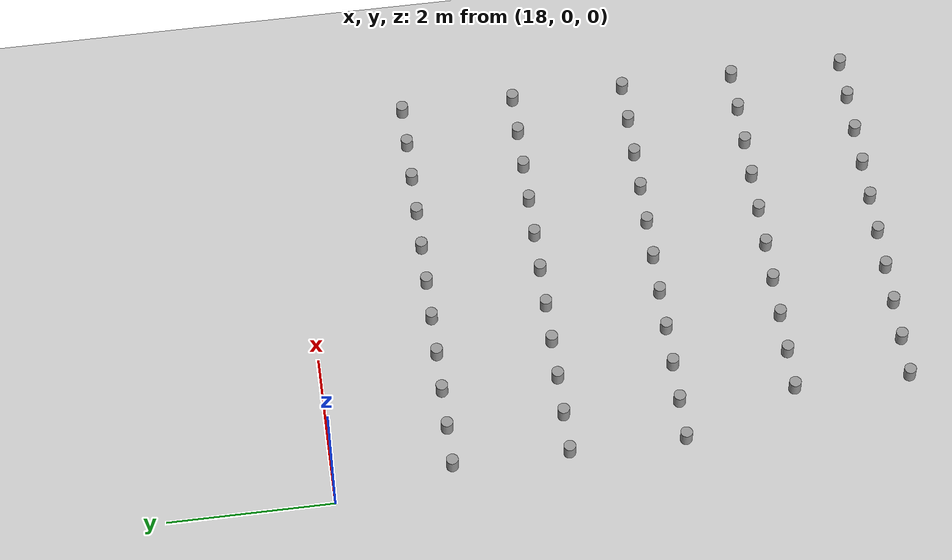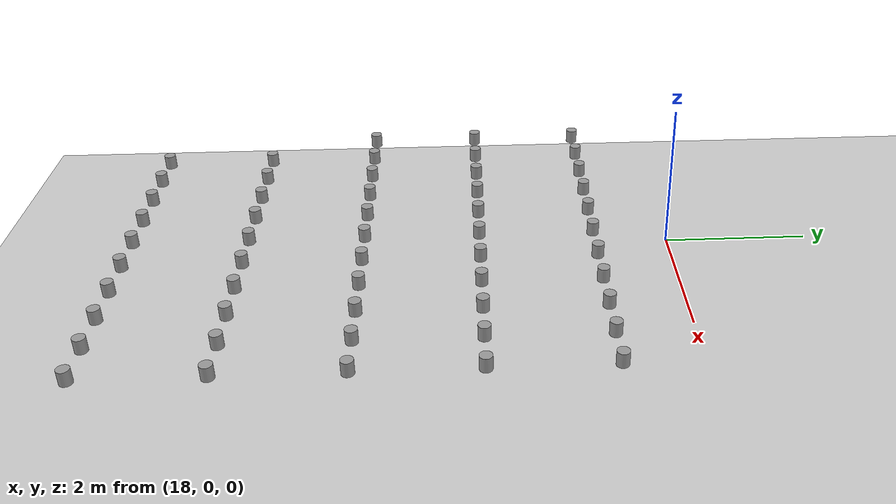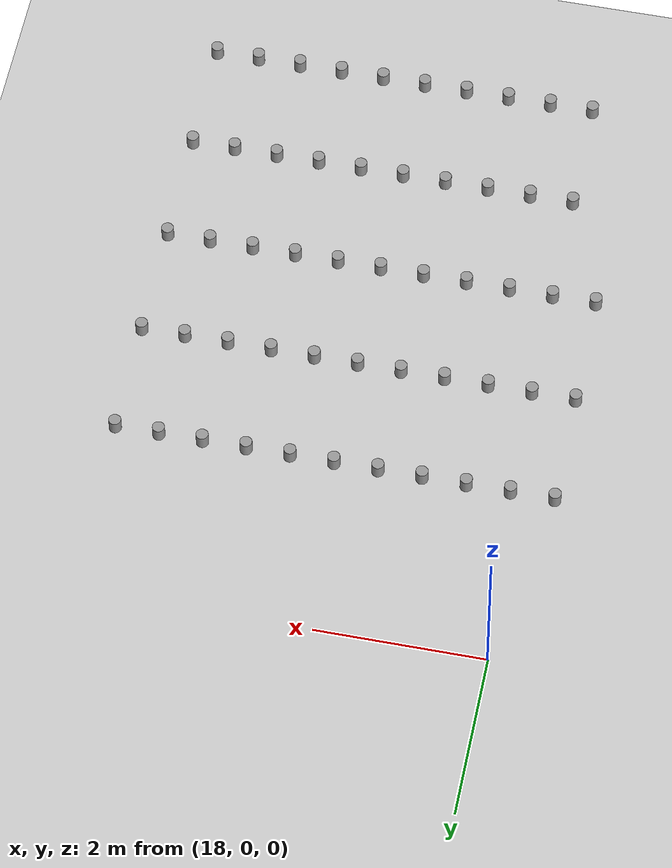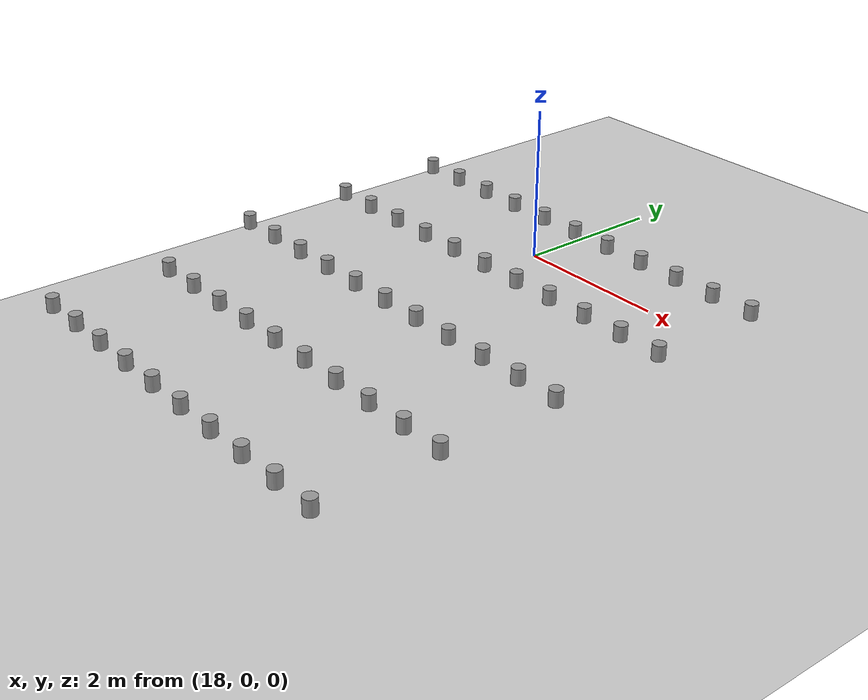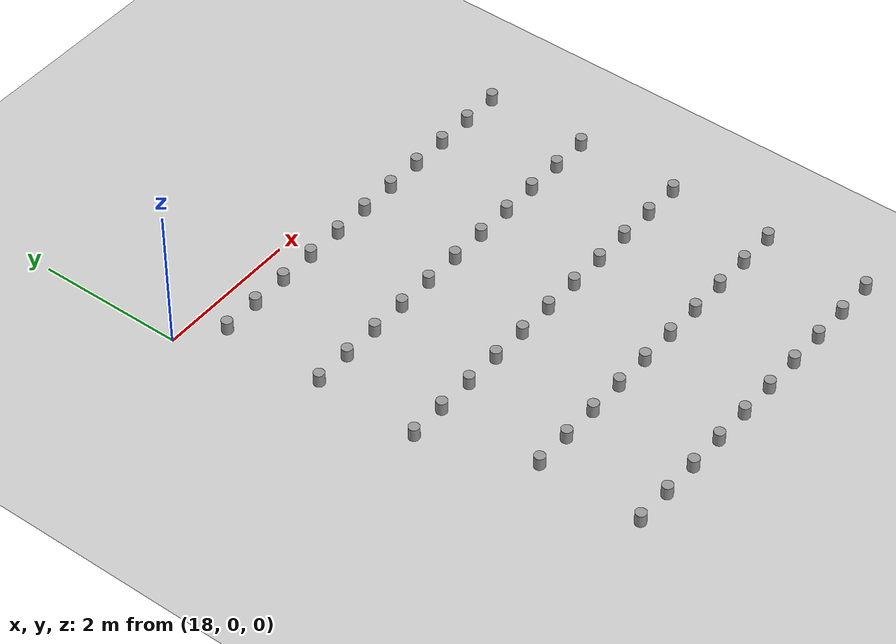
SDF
<sdf version="1.4">
 <world name="default">
  <model name="pot_107">
   <static>1</static>
   <link name="link_0">
    <collision name="collision">
     <geometry><cylinder><length>0.17</length><radius>0.07</radius></cylinder></geometry>
    </collision>
    <visual name="visual">
     <geometry><cylinder><length>0.17</length><radius>0.07</radius></cylinder></geometry>
     <material>
      <script><uri>file://media/materials/scripts/gazebo.material</uri><name>Gazebo/Grey</name></script>
      <emissive>0 0 0 1</emissive>
      <shader type="vertex"><normal_map>__default__</normal_map></shader>
      <specular>0.01 0.01 0.01 1</specular>
      <lighting>1</lighting>
      <ambient>0.1 0.1 0.1 1</ambient>
      <diffuse>0.05 0.05 0.05 1</diffuse>
     </material>
     <cast_shadows>0</cast_shadows>
    </visual>
    <pose>17.524 -4.050 1.467 0.0 0.0 0.0</pose>
   </link>
  </model>
  <model name="pot_108">
   <static>1</static>
   <link name="link_0">
    <collision name="collision">
     <geometry><cylinder><length>0.17</length><radius>0.07</radius></cylinder></geometry>
    </collision>
    <visual name="visual">
     <geometry><cylinder><length>0.17</length><radius>0.07</radius></cylinder></geometry>
     <material>
      <script><uri>file://media/materials/scripts/gazebo.material</uri><name>Gazebo/Grey</name></script>
      <emissive>0 0 0 1</emissive>
      <shader type="vertex"><normal_map>__default__</normal_map></shader>
      <specular>0.01 0.01 0.01 1</specular>
      <lighting>1</lighting>
      <ambient>0.1 0.1 0.1 1</ambient>
      <diffuse>0.05 0.05 0.05 1</diffuse>
     </material>
     <cast_shadows>0</cast_shadows>
    </visual>
    <pose>17.524 -2.700 1.467 0.0 0.0 0.0</pose>
   </link>
  </model>
  <model name="pot_109">
   <static>1</static>
   <link name="link_0">
    <collision name="collision">
     <geometry><cylinder><length>0.17</length><radius>0.07</radius></cylinder></geometry>
    </collision>
    <visual name="visual">
     <geometry><cylinder><length>0.17</length><radius>0.07</radius></cylinder></geometry>
     <material>
      <script><uri>file://media/materials/scripts/gazebo.material</uri><name>Gazebo/Grey</name></script>
      <emissive>0 0 0 1</emissive>
      <shader type="vertex"><normal_map>__default__</normal_map></shader>
      <specular>0.01 0.01 0.01 1</specular>
      <lighting>1</lighting>
      <ambient>0.1 0.1 0.1 1</ambient>
      <diffuse>0.05 0.05 0.05 1</diffuse>
     </material>
     <cast_shadows>0</cast_shadows>
    </visual>
    <pose>17.524 -1.350 1.467 0.0 0.0 0.0</pose>
   </link>
  </model>
  <model name="pot_110">
   <static>1</static>
   <link name="link_0">
    <collision name="collision">
     <geometry><cylinder><length>0.17</length><radius>0.07</radius></cylinder></geometry>
    </collision>
    <visual name="visual">
     <geometry><cylinder><length>0.17</length><radius>0.07</radius></cylinder></geometry>
     <material>
      <script><uri>file://media/materials/scripts/gazebo.material</uri><name>Gazebo/Grey</name></script>
      <emissive>0 0 0 1</emissive>
      <shader type="vertex"><normal_map>__default__</normal_map></shader>
      <specular>0.01 0.01 0.01 1</specular>
      <lighting>1</lighting>
      <ambient>0.1 0.1 0.1 1</ambient>
      <diffuse>0.05 0.05 0.05 1</diffuse>
     </material>
     <cast_shadows>0</cast_shadows>
    </visual>
    <pose>18.024 -6.750 1.467 0.0 0.0 0.0</pose>
   </link>
  </model>
  <model name="pot_111">
   <static>1</static>
   <link name="link_0">
    <collision name="collision">
     <geometry><cylinder><length>0.17</length><radius>0.07</radius></cylinder></geometry>
    </collision>
    <visual name="visual">
     <geometry><cylinder><length>0.17</length><radius>0.07</radius></cylinder></geometry>
     <material>
      <script><uri>file://media/materials/scripts/gazebo.material</uri><name>Gazebo/Grey</name></script>
      <emissive>0 0 0 1</emissive>
      <shader type="vertex"><normal_map>__default__</normal_map></shader>
      <specular>0.01 0.01 0.01 1</specular>
      <lighting>1</lighting>
      <ambient>0.1 0.1 0.1 1</ambient>
      <diffuse>0.05 0.05 0.05 1</diffuse>
     </material>
     <cast_shadows>0</cast_shadows>
    </visual>
    <pose>18.024 -5.400 1.467 0.0 0.0 0.0</pose>
   </link>
  </model>
  <model name="pot_112">
   <static>1</static>
   <link name="link_0">
    <collision name="collision">
     <geometry><cylinder><length>0.17</length><radius>0.07</radius></cylinder></geometry>
    </collision>
    <visual name="visual">
     <geometry><cylinder><length>0.17</length><radius>0.07</radius></cylinder></geometry>
     <material>
      <script><uri>file://media/materials/scripts/gazebo.material</uri><name>Gazebo/Grey</name></script>
      <emissive>0 0 0 1</emissive>
      <shader type="vertex"><normal_map>__default__</normal_map></shader>
      <specular>0.01 0.01 0.01 1</specular>
      <lighting>1</lighting>
      <ambient>0.1 0.1 0.1 1</ambient>
      <diffuse>0.05 0.05 0.05 1</diffuse>
     </material>
     <cast_shadows>0</cast_shadows>
    </visual>
    <pose>18.024 -4.050 1.467 0.0 0.0 0.0</pose>
   </link>
  </model>
  <model name="pot_113">
   <static>1</static>
   <link name="link_0">
    <collision name="collision">
     <geometry><cylinder><length>0.17</length><radius>0.07</radius></cylinder></geometry>
    </collision>
    <visual name="visual">
     <geometry><cylinder><length>0.17</length><radius>0.07</radius></cylinder></geometry>
     <material>
      <script><uri>file://media/materials/scripts/gazebo.material</uri><name>Gazebo/Grey</name></script>
      <emissive>0 0 0 1</emissive>
      <shader type="vertex"><normal_map>__default__</normal_map></shader>
      <specular>0.01 0.01 0.01 1</specular>
      <lighting>1</lighting>
      <ambient>0.1 0.1 0.1 1</ambient>
      <diffuse>0.05 0.05 0.05 1</diffuse>
     </material>
     <cast_shadows>0</cast_shadows>
    </visual>
    <pose>18.024 -2.700 1.467 0.0 0.0 0.0</pose>
   </link>
  </model>
  <model name="pot_114">
   <static>1</static>
   <link name="link_0">
    <collision name="collision">
     <geometry><cylinder><length>0.17</length><radius>0.07</radius></cylinder></geometry>
    </collision>
    <visual name="visual">
     <geometry><cylinder><length>0.17</length><radius>0.07</radius></cylinder></geometry>
     <material>
      <script><uri>file://media/materials/scripts/gazebo.material</uri><name>Gazebo/Grey</name></script>
      <emissive>0 0 0 1</emissive>
      <shader type="vertex"><normal_map>__default__</normal_map></shader>
      <specular>0.01 0.01 0.01 1</specular>
      <lighting>1</lighting>
      <ambient>0.1 0.1 0.1 1</ambient>
      <diffuse>0.05 0.05 0.05 1</diffuse>
     </material>
     <cast_shadows>0</cast_shadows>
    </visual>
    <pose>18.024 -1.350 1.467 0.0 0.0 0.0</pose>
   </link>
  </model>
  <model name="pot_115">
   <static>1</static>
   <link name="link_0">
    <collision name="collision">
     <geometry><cylinder><length>0.17</length><radius>0.07</radius></cylinder></geometry>
    </collision>
    <visual name="visual">
     <geometry><cylinder><length>0.17</length><radius>0.07</radius></cylinder></geometry>
     <material>
      <script><uri>file://media/materials/scripts/gazebo.material</uri><name>Gazebo/Grey</name></script>
      <emissive>0 0 0 1</emissive>
      <shader type="vertex"><normal_map>__default__</normal_map></shader>
      <specular>0.01 0.01 0.01 1</specular>
      <lighting>1</lighting>
      <ambient>0.1 0.1 0.1 1</ambient>
      <diffuse>0.05 0.05 0.05 1</diffuse>
     </material>
     <cast_shadows>0</cast_shadows>
    </visual>
    <pose>18.524 -6.750 1.467 0.0 0.0 0.0</pose>
   </link>
  </model>
  <model name="pot_116">
   <static>1</static>
   <link name="link_0">
    <collision name="collision">
     <geometry><cylinder><length>0.17</length><radius>0.07</radius></cylinder></geometry>
    </collision>
    <visual name="visual">
     <geometry><cylinder><length>0.17</length><radius>0.07</radius></cylinder></geometry>
     <material>
      <script><uri>file://media/materials/scripts/gazebo.material</uri><name>Gazebo/Grey</name></script>
      <emissive>0 0 0 1</emissive>
      <shader type="vertex"><normal_map>__default__</normal_map></shader>
      <specular>0.01 0.01 0.01 1</specular>
      <lighting>1</lighting>
      <ambient>0.1 0.1 0.1 1</ambient>
      <diffuse>0.05 0.05 0.05 1</diffuse>
     </material>
     <cast_shadows>0</cast_shadows>
    </visual>
    <pose>18.524 -5.400 1.467 0.0 0.0 0.0</pose>
   </link>
  </model>
  <model name="pot_117">
   <static>1</static>
   <link name="link_0">
    <collision name="collision">
     <geometry><cylinder><length>0.17</length><radius>0.07</radius></cylinder></geometry>
    </collision>
    <visual name="visual">
     <geometry><cylinder><length>0.17</length><radius>0.07</radius></cylinder></geometry>
     <material>
      <script><uri>file://media/materials/scripts/gazebo.material</uri><name>Gazebo/Grey</name></script>
      <emissive>0 0 0 1</emissive>
      <shader type="vertex"><normal_map>__default__</normal_map></shader>
      <specular>0.01 0.01 0.01 1</specular>
      <lighting>1</lighting>
      <ambient>0.1 0.1 0.1 1</ambient>
      <diffuse>0.05 0.05 0.05 1</diffuse>
     </material>
     <cast_shadows>0</cast_shadows>
    </visual>
    <pose>18.524 -4.050 1.467 0.0 0.0 0.0</pose>
   </link>
  </model>
  <model name="pot_118">
   <static>1</static>
   <link name="link_0">
    <collision name="collision">
     <geometry><cylinder><length>0.17</length><radius>0.07</radius></cylinder></geometry>
    </collision>
    <visual name="visual">
     <geometry><cylinder><length>0.17</length><radius>0.07</radius></cylinder></geometry>
     <material>
      <script><uri>file://media/materials/scripts/gazebo.material</uri><name>Gazebo/Grey</name></script>
      <emissive>0 0 0 1</emissive>
      <shader type="vertex"><normal_map>__default__</normal_map></shader>
      <specular>0.01 0.01 0.01 1</specular>
      <lighting>1</lighting>
      <ambient>0.1 0.1 0.1 1</ambient>
      <diffuse>0.05 0.05 0.05 1</diffuse>
     </material>
     <cast_shadows>0</cast_shadows>
    </visual>
    <pose>18.524 -2.700 1.467 0.0 0.0 0.0</pose>
   </link>
  </model>
  <model name="pot_119">
   <static>1</static>
   <link name="link_0">
    <collision name="collision">
     <geometry><cylinder><length>0.17</length><radius>0.07</radius></cylinder></geometry>
    </collision>
    <visual name="visual">
     <geometry><cylinder><length>0.17</length><radius>0.07</radius></cylinder></geometry>
     <material>
      <script><uri>file://media/materials/scripts/gazebo.material</uri><name>Gazebo/Grey</name></script>
      <emissive>0 0 0 1</emissive>
      <shader type="vertex"><normal_map>__default__</normal_map></shader>
      <specular>0.01 0.01 0.01 1</specular>
      <lighting>1</lighting>
      <ambient>0.1 0.1 0.1 1</ambient>
      <diffuse>0.05 0.05 0.05 1</diffuse>
     </material>
     <cast_shadows>0</cast_shadows>
    </visual>
    <pose>18.524 -1.350 1.467 0.0 0.0 0.0</pose>
   </link>
  </model>
  <model name="pot_120">
   <static>1</static>
   <link name="link_0">
    <collision name="collision">
     <geometry><cylinder><length>0.17</length><radius>0.07</radius></cylinder></geometry>
    </collision>
    <visual name="visual">
     <geometry><cylinder><length>0.17</length><radius>0.07</radius></cylinder></geometry>
     <material>
      <script><uri>file://media/materials/scripts/gazebo.material</uri><name>Gazebo/Grey</name></script>
      <emissive>0 0 0 1</emissive>
      <shader type="vertex"><normal_map>__default__</normal_map></shader>
      <specular>0.01 0.01 0.01 1</specular>
      <lighting>1</lighting>
      <ambient>0.1 0.1 0.1 1</ambient>
      <diffuse>0.05 0.05 0.05 1</diffuse>
     </material>
     <cast_shadows>0</cast_shadows>
    </visual>
    <pose>19.024 -6.750 1.467 0.0 0.0 0.0</pose>
   </link>
  </model>
  <model name="pot_121">
   <static>1</static>
   <link name="link_0">
    <collision name="collision">
     <geometry><cylinder><length>0.17</length><radius>0.07</radius></cylinder></geometry>
    </collision>
    <visual name="visual">
     <geometry><cylinder><length>0.17</length><radius>0.07</radius></cylinder></geometry>
     <material>
      <script><uri>file://media/materials/scripts/gazebo.material</uri><name>Gazebo/Grey</name></script>
      <emissive>0 0 0 1</emissive>
      <shader type="vertex"><normal_map>__default__</normal_map></shader>
      <specular>0.01 0.01 0.01 1</specular>
      <lighting>1</lighting>
      <ambient>0.1 0.1 0.1 1</ambient>
      <diffuse>0.05 0.05 0.05 1</diffuse>
     </material>
     <cast_shadows>0</cast_shadows>
    </visual>
    <pose>19.024 -5.400 1.467 0.0 0.0 0.0</pose>
   </link>
  </model>
  <model name="pot_122">
   <static>1</static>
   <link name="link_0">
    <collision name="collision">
     <geometry><cylinder><length>0.17</length><radius>0.07</radius></cylinder></geometry>
    </collision>
    <visual name="visual">
     <geometry><cylinder><length>0.17</length><radius>0.07</radius></cylinder></geometry>
     <material>
      <script><uri>file://media/materials/scripts/gazebo.material</uri><name>Gazebo/Grey</name></script>
      <emissive>0 0 0 1</emissive>
      <shader type="vertex"><normal_map>__default__</normal_map></shader>
      <specular>0.01 0.01 0.01 1</specular>
      <lighting>1</lighting>
      <ambient>0.1 0.1 0.1 1</ambient>
      <diffuse>0.05 0.05 0.05 1</diffuse>
     </material>
     <cast_shadows>0</cast_shadows>
    </visual>
    <pose>19.024 -4.050 1.467 0.0 0.0 0.0</pose>
   </link>
  </model>
  <model name="pot_123">
   <static>1</static>
   <link name="link_0">
    <collision name="collision">
     <geometry><cylinder><length>0.17</length><radius>0.07</radius></cylinder></geometry>
    </collision>
    <visual name="visual">
     <geometry><cylinder><length>0.17</length><radius>0.07</radius></cylinder></geometry>
     <material>
      <script><uri>file://media/materials/scripts/gazebo.material</uri><name>Gazebo/Grey</name></script>
      <emissive>0 0 0 1</emissive>
      <shader type="vertex"><normal_map>__default__</normal_map></shader>
      <specular>0.01 0.01 0.01 1</specular>
      <lighting>1</lighting>
      <ambient>0.1 0.1 0.1 1</ambient>
      <diffuse>0.05 0.05 0.05 1</diffuse>
     </material>
     <cast_shadows>0</cast_shadows>
    </visual>
    <pose>19.024 -2.700 1.467 0.0 0.0 0.0</pose>
   </link>
  </model>
  <model name="pot_124">
   <static>1</static>
   <link name="link_0">
    <collision name="collision">
     <geometry><cylinder><length>0.17</length><radius>0.07</radius></cylinder></geometry>
    </collision>
    <visual name="visual">
     <geometry><cylinder><length>0.17</length><radius>0.07</radius></cylinder></geometry>
     <material>
      <script><uri>file://media/materials/scripts/gazebo.material</uri><name>Gazebo/Grey</name></script>
      <emissive>0 0 0 1</emissive>
      <shader type="vertex"><normal_map>__default__</normal_map></shader>
      <specular>0.01 0.01 0.01 1</specular>
      <lighting>1</lighting>
      <ambient>0.1 0.1 0.1 1</ambient>
      <diffuse>0.05 0.05 0.05 1</diffuse>
     </material>
     <cast_shadows>0</cast_shadows>
    </visual>
    <pose>19.024 -1.350 1.467 0.0 0.0 0.0</pose>
   </link>
  </model>
  <model name="pot_125">
   <static>1</static>
   <link name="link_0">
    <collision name="collision">
     <geometry><cylinder><length>0.17</length><radius>0.07</radius></cylinder></geometry>
    </collision>
    <visual name="visual">
     <geometry><cylinder><length>0.17</length><radius>0.07</radius></cylinder></geometry>
     <material>
      <script><uri>file://media/materials/scripts/gazebo.material</uri><name>Gazebo/Grey</name></script>
      <emissive>0 0 0 1</emissive>
      <shader type="vertex"><normal_map>__default__</normal_map></shader>
      <specular>0.01 0.01 0.01 1</specular>
      <lighting>1</lighting>
      <ambient>0.1 0.1 0.1 1</ambient>
      <diffuse>0.05 0.05 0.05 1</diffuse>
     </material>
     <cast_shadows>0</cast_shadows>
    </visual>
    <pose>19.524 -6.750 1.467 0.0 0.0 0.0</pose>
   </link>
  </model>
  <model name="pot_126">
   <static>1</static>
   <link name="link_0">
    <collision name="collision">
     <geometry><cylinder><length>0.17</length><radius>0.07</radius></cylinder></geometry>
    </collision>
    <visual name="visual">
     <geometry><cylinder><length>0.17</length><radius>0.07</radius></cylinder></geometry>
     <material>
      <script><uri>file://media/materials/scripts/gazebo.material</uri><name>Gazebo/Grey</name></script>
      <emissive>0 0 0 1</emissive>
      <shader type="vertex"><normal_map>__default__</normal_map></shader>
      <specular>0.01 0.01 0.01 1</specular>
      <lighting>1</lighting>
      <ambient>0.1 0.1 0.1 1</ambient>
      <diffuse>0.05 0.05 0.05 1</diffuse>
     </material>
     <cast_shadows>0</cast_shadows>
    </visual>
    <pose>19.524 -5.400 1.467 0.0 0.0 0.0</pose>
   </link>
  </model>
  <model name="pot_127">
   <static>1</static>
   <link name="link_0">
    <collision name="collision">
     <geometry><cylinder><length>0.17</length><radius>0.07</radius></cylinder></geometry>
    </collision>
    <visual name="visual">
     <geometry><cylinder><length>0.17</length><radius>0.07</radius></cylinder></geometry>
     <material>
      <script><uri>file://media/materials/scripts/gazebo.material</uri><name>Gazebo/Grey</name></script>
      <emissive>0 0 0 1</emissive>
      <shader type="vertex"><normal_map>__default__</normal_map></shader>
      <specular>0.01 0.01 0.01 1</specular>
      <lighting>1</lighting>
      <ambient>0.1 0.1 0.1 1</ambient>
      <diffuse>0.05 0.05 0.05 1</diffuse>
     </material>
     <cast_shadows>0</cast_shadows>
    </visual>
    <pose>19.524 -4.050 1.467 0.0 0.0 0.0</pose>
   </link>
  </model>
  <model name="pot_128">
   <static>1</static>
   <link name="link_0">
    <collision name="collision">
     <geometry><cylinder><length>0.17</length><radius>0.07</radius></cylinder></geometry>
    </collision>
    <visual name="visual">
     <geometry><cylinder><length>0.17</length><radius>0.07</radius></cylinder></geometry>
     <material>
      <script><uri>file://media/materials/scripts/gazebo.material</uri><name>Gazebo/Grey</name></script>
      <emissive>0 0 0 1</emissive>
      <shader type="vertex"><normal_map>__default__</normal_map></shader>
      <specular>0.01 0.01 0.01 1</specular>
      <lighting>1</lighting>
      <ambient>0.1 0.1 0.1 1</ambient>
      <diffuse>0.05 0.05 0.05 1</diffuse>
     </material>
     <cast_shadows>0</cast_shadows>
    </visual>
    <pose>19.524 -2.700 1.467 0.0 0.0 0.0</pose>
   </link>
  </model>
  <model name="pot_129">
   <static>1</static>
   <link name="link_0">
    <collision name="collision">
     <geometry><cylinder><length>0.17</length><radius>0.07</radius></cylinder></geometry>
    </collision>
    <visual name="visual">
     <geometry><cylinder><length>0.17</length><radius>0.07</radius></cylinder></geometry>
     <material>
      <script><uri>file://media/materials/scripts/gazebo.material</uri><name>Gazebo/Grey</name></script>
      <emissive>0 0 0 1</emissive>
      <shader type="vertex"><normal_map>__default__</normal_map></shader>
      <specular>0.01 0.01 0.01 1</specular>
      <lighting>1</lighting>
      <ambient>0.1 0.1 0.1 1</ambient>
      <diffuse>0.05 0.05 0.05 1</diffuse>
     </material>
     <cast_shadows>0</cast_shadows>
    </visual>
    <pose>19.524 -1.350 1.467 0.0 0.0 0.0</pose>
   </link>
  </model>
  <model name="pot_130">
   <static>1</static>
   <link name="link_0">
    <collision name="collision">
     <geometry><cylinder><length>0.17</length><radius>0.07</radius></cylinder></geometry>
    </collision>
    <visual name="visual">
     <geometry><cylinder><length>0.17</length><radius>0.07</radius></cylinder></geometry>
     <material>
      <script><uri>file://media/materials/scripts/gazebo.material</uri><name>Gazebo/Grey</name></script>
      <emissive>0 0 0 1</emissive>
      <shader type="vertex"><normal_map>__default__</normal_map></shader>
      <specular>0.01 0.01 0.01 1</specular>
      <lighting>1</lighting>
      <ambient>0.1 0.1 0.1 1</ambient>
      <diffuse>0.05 0.05 0.05 1</diffuse>
     </material>
     <cast_shadows>0</cast_shadows>
    </visual>
    <pose>20.024 -6.750 1.467 0.0 0.0 0.0</pose>
   </link>
  </model>
  <model name="pot_131">
   <static>1</static>
   <link name="link_0">
    <collision name="collision">
     <geometry><cylinder><length>0.17</length><radius>0.07</radius></cylinder></geometry>
    </collision>
    <visual name="visual">
     <geometry><cylinder><length>0.17</length><radius>0.07</radius></cylinder></geometry>
     <material>
      <script><uri>file://media/materials/scripts/gazebo.material</uri><name>Gazebo/Grey</name></script>
      <emissive>0 0 0 1</emissive>
      <shader type="vertex"><normal_map>__default__</normal_map></shader>
      <specular>0.01 0.01 0.01 1</specular>
      <lighting>1</lighting>
      <ambient>0.1 0.1 0.1 1</ambient>
      <diffuse>0.05 0.05 0.05 1</diffuse>
     </material>
     <cast_shadows>0</cast_shadows>
    </visual>
    <pose>20.024 -5.400 1.467 0.0 0.0 0.0</pose>
   </link>
  </model>
  <model name="pot_132">
   <static>1</static>
   <link name="link_0">
    <collision name="collision">
     <geometry><cylinder><length>0.17</length><radius>0.07</radius></cylinder></geometry>
    </collision>
    <visual name="visual">
     <geometry><cylinder><length>0.17</length><radius>0.07</radius></cylinder></geometry>
     <material>
      <script><uri>file://media/materials/scripts/gazebo.material</uri><name>Gazebo/Grey</name></script>
      <emissive>0 0 0 1</emissive>
      <shader type="vertex"><normal_map>__default__</normal_map></shader>
      <specular>0.01 0.01 0.01 1</specular>
      <lighting>1</lighting>
      <ambient>0.1 0.1 0.1 1</ambient>
      <diffuse>0.05 0.05 0.05 1</diffuse>
     </material>
     <cast_shadows>0</cast_shadows>
    </visual>
    <pose>20.024 -4.050 1.467 0.0 0.0 0.0</pose>
   </link>
  </model>
  <model name="pot_133">
   <static>1</static>
   <link name="link_0">
    <collision name="collision">
     <geometry><cylinder><length>0.17</length><radius>0.07</radius></cylinder></geometry>
    </collision>
    <visual name="visual">
     <geometry><cylinder><length>0.17</length><radius>0.07</radius></cylinder></geometry>
     <material>
      <script><uri>file://media/materials/scripts/gazebo.material</uri><name>Gazebo/Grey</name></script>
      <emissive>0 0 0 1</emissive>
      <shader type="vertex"><normal_map>__default__</normal_map></shader>
      <specular>0.01 0.01 0.01 1</specular>
      <lighting>1</lighting>
      <ambient>0.1 0.1 0.1 1</ambient>
      <diffuse>0.05 0.05 0.05 1</diffuse>
     </material>
     <cast_shadows>0</cast_shadows>
    </visual>
    <pose>20.024 -2.700 1.467 0.0 0.0 0.0</pose>
   </link>
  </model>
  <model name="pot_134">
   <static>1</static>
   <link name="link_0">
    <collision name="collision">
     <geometry><cylinder><length>0.17</length><radius>0.07</radius></cylinder></geometry>
    </collision>
    <visual name="visual">
     <geometry><cylinder><length>0.17</length><radius>0.07</radius></cylinder></geometry>
     <material>
      <script><uri>file://media/materials/scripts/gazebo.material</uri><name>Gazebo/Grey</name></script>
      <emissive>0 0 0 1</emissive>
      <shader type="vertex"><normal_map>__default__</normal_map></shader>
      <specular>0.01 0.01 0.01 1</specular>
      <lighting>1</lighting>
      <ambient>0.1 0.1 0.1 1</ambient>
      <diffuse>0.05 0.05 0.05 1</diffuse>
     </material>
     <cast_shadows>0</cast_shadows>
    </visual>
    <pose>20.024 -1.350 1.467 0.0 0.0 0.0</pose>
   </link>
  </model>
  <model name="pot_135">
   <static>1</static>
   <link name="link_0">
    <collision name="collision">
     <geometry><cylinder><length>0.17</length><radius>0.07</radius></cylinder></geometry>
    </collision>
    <visual name="visual">
     <geometry><cylinder><length>0.17</length><radius>0.07</radius></cylinder></geometry>
     <material>
      <script><uri>file://media/materials/scripts/gazebo.material</uri><name>Gazebo/Grey</name></script>
      <emissive>0 0 0 1</emissive>
      <shader type="vertex"><normal_map>__default__</normal_map></shader>
      <specular>0.01 0.01 0.01 1</specular>
      <lighting>1</lighting>
      <ambient>0.1 0.1 0.1 1</ambient>
      <diffuse>0.05 0.05 0.05 1</diffuse>
     </material>
     <cast_shadows>0</cast_shadows>
    </visual>
    <pose>20.524 -6.750 1.467 0.0 0.0 0.0</pose>
   </link>
  </model>
  <model name="pot_136">
   <static>1</static>
   <link name="link_0">
    <collision name="collision">
     <geometry><cylinder><length>0.17</length><radius>0.07</radius></cylinder></geometry>
    </collision>
    <visual name="visual">
     <geometry><cylinder><length>0.17</length><radius>0.07</radius></cylinder></geometry>
     <material>
      <script><uri>file://media/materials/scripts/gazebo.material</uri><name>Gazebo/Grey</name></script>
      <emissive>0 0 0 1</emissive>
      <shader type="vertex"><normal_map>__default__</normal_map></shader>
      <specular>0.01 0.01 0.01 1</specular>
      <lighting>1</lighting>
      <ambient>0.1 0.1 0.1 1</ambient>
      <diffuse>0.05 0.05 0.05 1</diffuse>
     </material>
     <cast_shadows>0</cast_shadows>
    </visual>
    <pose>20.524 -5.400 1.467 0.0 0.0 0.0</pose>
   </link>
  </model>
  <model name="pot_137">
   <static>1</static>
   <link name="link_0">
    <collision name="collision">
     <geometry><cylinder><length>0.17</length><radius>0.07</radius></cylinder></geometry>
    </collision>
    <visual name="visual">
     <geometry><cylinder><length>0.17</length><radius>0.07</radius></cylinder></geometry>
     <material>
      <script><uri>file://media/materials/scripts/gazebo.material</uri><name>Gazebo/Grey</name></script>
      <emissive>0 0 0 1</emissive>
      <shader type="vertex"><normal_map>__default__</normal_map></shader>
      <specular>0.01 0.01 0.01 1</specular>
      <lighting>1</lighting>
      <ambient>0.1 0.1 0.1 1</ambient>
      <diffuse>0.05 0.05 0.05 1</diffuse>
     </material>
     <cast_shadows>0</cast_shadows>
    </visual>
    <pose>20.524 -4.050 1.467 0.0 0.0 0.0</pose>
   </link>
  </model>
  <model name="pot_138">
   <static>1</static>
   <link name="link_0">
    <collision name="collision">
     <geometry><cylinder><length>0.17</length><radius>0.07</radius></cylinder></geometry>
    </collision>
    <visual name="visual">
     <geometry><cylinder><length>0.17</length><radius>0.07</radius></cylinder></geometry>
     <material>
      <script><uri>file://media/materials/scripts/gazebo.material</uri><name>Gazebo/Grey</name></script>
      <emissive>0 0 0 1</emissive>
      <shader type="vertex"><normal_map>__default__</normal_map></shader>
      <specular>0.01 0.01 0.01 1</specular>
      <lighting>1</lighting>
      <ambient>0.1 0.1 0.1 1</ambient>
      <diffuse>0.05 0.05 0.05 1</diffuse>
     </material>
     <cast_shadows>0</cast_shadows>
    </visual>
    <pose>20.524 -2.700 1.467 0.0 0.0 0.0</pose>
   </link>
  </model>
  <model name="pot_139">
   <static>1</static>
   <link name="link_0">
    <collision name="collision">
     <geometry><cylinder><length>0.17</length><radius>0.07</radius></cylinder></geometry>
    </collision>
    <visual name="visual">
     <geometry><cylinder><length>0.17</length><radius>0.07</radius></cylinder></geometry>
     <material>
      <script><uri>file://media/materials/scripts/gazebo.material</uri><name>Gazebo/Grey</name></script>
      <emissive>0 0 0 1</emissive>
      <shader type="vertex"><normal_map>__default__</normal_map></shader>
      <specular>0.01 0.01 0.01 1</specular>
      <lighting>1</lighting>
      <ambient>0.1 0.1 0.1 1</ambient>
      <diffuse>0.05 0.05 0.05 1</diffuse>
     </material>
     <cast_shadows>0</cast_shadows>
    </visual>
    <pose>20.524 -1.350 1.467 0.0 0.0 0.0</pose>
   </link>
  </model>
  <model name="pot_140">
   <static>1</static>
   <link name="link_0">
    <collision name="collision">
     <geometry><cylinder><length>0.17</length><radius>0.07</radius></cylinder></geometry>
    </collision>
    <visual name="visual">
     <geometry><cylinder><length>0.17</length><radius>0.07</radius></cylinder></geometry>
     <material>
      <script><uri>file://media/materials/scripts/gazebo.material</uri><name>Gazebo/Grey</name></script>
      <emissive>0 0 0 1</emissive>
      <shader type="vertex"><normal_map>__default__</normal_map></shader>
      <specular>0.01 0.01 0.01 1</specular>
      <lighting>1</lighting>
      <ambient>0.1 0.1 0.1 1</ambient>
      <diffuse>0.05 0.05 0.05 1</diffuse>
     </material>
     <cast_shadows>0</cast_shadows>
    </visual>
    <pose>21.024 -6.750 1.467 0.0 0.0 0.0</pose>
   </link>
  </model>
  <model name="pot_141">
   <static>1</static>
   <link name="link_0">
    <collision name="collision">
     <geometry><cylinder><length>0.17</length><radius>0.07</radius></cylinder></geometry>
    </collision>
    <visual name="visual">
     <geometry><cylinder><length>0.17</length><radius>0.07</radius></cylinder></geometry>
     <material>
      <script><uri>file://media/materials/scripts/gazebo.material</uri><name>Gazebo/Grey</name></script>
      <emissive>0 0 0 1</emissive>
      <shader type="vertex"><normal_map>__default__</normal_map></shader>
      <specular>0.01 0.01 0.01 1</specular>
      <lighting>1</lighting>
      <ambient>0.1 0.1 0.1 1</ambient>
      <diffuse>0.05 0.05 0.05 1</diffuse>
     </material>
     <cast_shadows>0</cast_shadows>
    </visual>
    <pose>21.024 -5.400 1.467 0.0 0.0 0.0</pose>
   </link>
  </model>
  <model name="pot_142">
   <static>1</static>
   <link name="link_0">
    <collision name="collision">
     <geometry><cylinder><length>0.17</length><radius>0.07</radius></cylinder></geometry>
    </collision>
    <visual name="visual">
     <geometry><cylinder><length>0.17</length><radius>0.07</radius></cylinder></geometry>
     <material>
      <script><uri>file://media/materials/scripts/gazebo.material</uri><name>Gazebo/Grey</name></script>
      <emissive>0 0 0 1</emissive>
      <shader type="vertex"><normal_map>__default__</normal_map></shader>
      <specular>0.01 0.01 0.01 1</specular>
      <lighting>1</lighting>
      <ambient>0.1 0.1 0.1 1</ambient>
      <diffuse>0.05 0.05 0.05 1</diffuse>
     </material>
     <cast_shadows>0</cast_shadows>
    </visual>
    <pose>21.024 -4.050 1.467 0.0 0.0 0.0</pose>
   </link>
  </model>
  <model name="pot_143">
   <static>1</static>
   <link name="link_0">
    <collision name="collision">
     <geometry><cylinder><length>0.17</length><radius>0.07</radius></cylinder></geometry>
    </collision>
    <visual name="visual">
     <geometry><cylinder><length>0.17</length><radius>0.07</radius></cylinder></geometry>
     <material>
      <script><uri>file://media/materials/scripts/gazebo.material</uri><name>Gazebo/Grey</name></script>
      <emissive>0 0 0 1</emissive>
      <shader type="vertex"><normal_map>__default__</normal_map></shader>
      <specular>0.01 0.01 0.01 1</specular>
      <lighting>1</lighting>
      <ambient>0.1 0.1 0.1 1</ambient>
      <diffuse>0.05 0.05 0.05 1</diffuse>
     </material>
     <cast_shadows>0</cast_shadows>
    </visual>
    <pose>21.024 -2.700 1.467 0.0 0.0 0.0</pose>
   </link>
  </model>
  <model name="pot_144">
   <static>1</static>
   <link name="link_0">
    <collision name="collision">
     <geometry><cylinder><length>0.17</length><radius>0.07</radius></cylinder></geometry>
    </collision>
    <visual name="visual">
     <geometry><cylinder><length>0.17</length><radius>0.07</radius></cylinder></geometry>
     <material>
      <script><uri>file://media/materials/scripts/gazebo.material</uri><name>Gazebo/Grey</name></script>
      <emissive>0 0 0 1</emissive>
      <shader type="vertex"><normal_map>__default__</normal_map></shader>
      <specular>0.01 0.01 0.01 1</specular>
      <lighting>1</lighting>
      <ambient>0.1 0.1 0.1 1</ambient>
      <diffuse>0.05 0.05 0.05 1</diffuse>
     </material>
     <cast_shadows>0</cast_shadows>
    </visual>
    <pose>21.024 -1.350 1.467 0.0 0.0 0.0</pose>
   </link>
  </model>
  <model name="pot_145">
   <static>1</static>
   <link name="link_0">
    <collision name="collision">
     <geometry><cylinder><length>0.17</length><radius>0.07</radius></cylinder></geometry>
    </collision>
    <visual name="visual">
     <geometry><cylinder><length>0.17</length><radius>0.07</radius></cylinder></geometry>
     <material>
      <script><uri>file://media/materials/scripts/gazebo.material</uri><name>Gazebo/Grey</name></script>
      <emissive>0 0 0 1</emissive>
      <shader type="vertex"><normal_map>__default__</normal_map></shader>
      <specular>0.01 0.01 0.01 1</specular>
      <lighting>1</lighting>
      <ambient>0.1 0.1 0.1 1</ambient>
      <diffuse>0.05 0.05 0.05 1</diffuse>
     </material>
     <cast_shadows>0</cast_shadows>
    </visual>
    <pose>21.524 -6.750 1.467 0.0 0.0 0.0</pose>
   </link>
  </model>
  <model name="pot_146">
   <static>1</static>
   <link name="link_0">
    <collision name="collision">
     <geometry><cylinder><length>0.17</length><radius>0.07</radius></cylinder></geometry>
    </collision>
    <visual name="visual">
     <geometry><cylinder><length>0.17</length><radius>0.07</radius></cylinder></geometry>
     <material>
      <script><uri>file://media/materials/scripts/gazebo.material</uri><name>Gazebo/Grey</name></script>
      <emissive>0 0 0 1</emissive>
      <shader type="vertex"><normal_map>__default__</normal_map></shader>
      <specular>0.01 0.01 0.01 1</specular>
      <lighting>1</lighting>
      <ambient>0.1 0.1 0.1 1</ambient>
      <diffuse>0.05 0.05 0.05 1</diffuse>
     </material>
     <cast_shadows>0</cast_shadows>
    </visual>
    <pose>21.524 -5.400 1.467 0.0 0.0 0.0</pose>
   </link>
  </model>
  <model name="pot_147">
   <static>1</static>
   <link name="link_0">
    <collision name="collision">
     <geometry><cylinder><length>0.17</length><radius>0.07</radius></cylinder></geometry>
    </collision>
    <visual name="visual">
     <geometry><cylinder><length>0.17</length><radius>0.07</radius></cylinder></geometry>
     <material>
      <script><uri>file://media/materials/scripts/gazebo.material</uri><name>Gazebo/Grey</name></script>
      <emissive>0 0 0 1</emissive>
      <shader type="vertex"><normal_map>__default__</normal_map></shader>
      <specular>0.01 0.01 0.01 1</specular>
      <lighting>1</lighting>
      <ambient>0.1 0.1 0.1 1</ambient>
      <diffuse>0.05 0.05 0.05 1</diffuse>
     </material>
     <cast_shadows>0</cast_shadows>
    </visual>
    <pose>21.524 -4.050 1.467 0.0 0.0 0.0</pose>
   </link>
  </model>
  <model name="pot_148">
   <static>1</static>
   <link name="link_0">
    <collision name="collision">
     <geometry><cylinder><length>0.17</length><radius>0.07</radius></cylinder></geometry>
    </collision>
    <visual name="visual">
     <geometry><cylinder><length>0.17</length><radius>0.07</radius></cylinder></geometry>
     <material>
      <script><uri>file://media/materials/scripts/gazebo.material</uri><name>Gazebo/Grey</name></script>
      <emissive>0 0 0 1</emissive>
      <shader type="vertex"><normal_map>__default__</normal_map></shader>
      <specular>0.01 0.01 0.01 1</specular>
      <lighting>1</lighting>
      <ambient>0.1 0.1 0.1 1</ambient>
      <diffuse>0.05 0.05 0.05 1</diffuse>
     </material>
     <cast_shadows>0</cast_shadows>
    </visual>
    <pose>21.524 -2.700 1.467 0.0 0.0 0.0</pose>
   </link>
  </model>
  <model name="pot_149">
   <static>1</static>
   <link name="link_0">
    <collision name="collision">
     <geometry><cylinder><length>0.17</length><radius>0.07</radius></cylinder></geometry>
    </collision>
    <visual name="visual">
     <geometry><cylinder><length>0.17</length><radius>0.07</radius></cylinder></geometry>
     <material>
      <script><uri>file://media/materials/scripts/gazebo.material</uri><name>Gazebo/Grey</name></script>
      <emissive>0 0 0 1</emissive>
      <shader type="vertex"><normal_map>__default__</normal_map></shader>
      <specular>0.01 0.01 0.01 1</specular>
      <lighting>1</lighting>
      <ambient>0.1 0.1 0.1 1</ambient>
      <diffuse>0.05 0.05 0.05 1</diffuse>
     </material>
     <cast_shadows>0</cast_shadows>
    </visual>
    <pose>21.524 -1.350 1.467 0.0 0.0 0.0</pose>
   </link>
  </model>
  <model name="pot_150">
   <static>1</static>
   <link name="link_0">
    <collision name="collision">
     <geometry><cylinder><length>0.17</length><radius>0.07</radius></cylinder></geometry>
    </collision>
    <visual name="visual">
     <geometry><cylinder><length>0.17</length><radius>0.07</radius></cylinder></geometry>
     <material>
      <script><uri>file://media/materials/scripts/gazebo.material</uri><name>Gazebo/Grey</name></script>
      <emissive>0 0 0 1</emissive>
      <shader type="vertex"><normal_map>__default__</normal_map></shader>
      <specular>0.01 0.01 0.01 1</specular>
      <lighting>1</lighting>
      <ambient>0.1 0.1 0.1 1</ambient>
      <diffuse>0.05 0.05 0.05 1</diffuse>
     </material>
     <cast_shadows>0</cast_shadows>
    </visual>
    <pose>22.024 -6.750 1.467 0.0 0.0 0.0</pose>
   </link>
  </model>
  <model name="pot_151">
   <static>1</static>
   <link name="link_0">
    <collision name="collision">
     <geometry><cylinder><length>0.17</length><radius>0.07</radius></cylinder></geometry>
    </collision>
    <visual name="visual">
     <geometry><cylinder><length>0.17</length><radius>0.07</radius></cylinder></geometry>
     <material>
      <script><uri>file://media/materials/scripts/gazebo.material</uri><name>Gazebo/Grey</name></script>
      <emissive>0 0 0 1</emissive>
      <shader type="vertex"><normal_map>__default__</normal_map></shader>
      <specular>0.01 0.01 0.01 1</specular>
      <lighting>1</lighting>
      <ambient>0.1 0.1 0.1 1</ambient>
      <diffuse>0.05 0.05 0.05 1</diffuse>
     </material>
     <cast_shadows>0</cast_shadows>
    </visual>
    <pose>22.024 -5.400 1.467 0.0 0.0 0.0</pose>
   </link>
  </model>
  <model name="pot_152">
   <static>1</static>
   <link name="link_0">
    <collision name="collision">
     <geometry><cylinder><length>0.17</length><radius>0.07</radius></cylinder></geometry>
    </collision>
    <visual name="visual">
     <geometry><cylinder><length>0.17</length><radius>0.07</radius></cylinder></geometry>
     <material>
      <script><uri>file://media/materials/scripts/gazebo.material</uri><name>Gazebo/Grey</name></script>
      <emissive>0 0 0 1</emissive>
      <shader type="vertex"><normal_map>__default__</normal_map></shader>
      <specular>0.01 0.01 0.01 1</specular>
      <lighting>1</lighting>
      <ambient>0.1 0.1 0.1 1</ambient>
      <diffuse>0.05 0.05 0.05 1</diffuse>
     </material>
     <cast_shadows>0</cast_shadows>
    </visual>
    <pose>22.024 -4.050 1.467 0.0 0.0 0.0</pose>
   </link>
  </model>
  <model name="pot_153">
   <static>1</static>
   <link name="link_0">
    <collision name="collision">
     <geometry><cylinder><length>0.17</length><radius>0.07</radius></cylinder></geometry>
    </collision>
    <visual name="visual">
     <geometry><cylinder><length>0.17</length><radius>0.07</radius></cylinder></geometry>
     <material>
      <script><uri>file://media/materials/scripts/gazebo.material</uri><name>Gazebo/Grey</name></script>
      <emissive>0 0 0 1</emissive>
      <shader type="vertex"><normal_map>__default__</normal_map></shader>
      <specular>0.01 0.01 0.01 1</specular>
      <lighting>1</lighting>
      <ambient>0.1 0.1 0.1 1</ambient>
      <diffuse>0.05 0.05 0.05 1</diffuse>
     </material>
     <cast_shadows>0</cast_shadows>
    </visual>
    <pose>22.024 -2.700 1.467 0.0 0.0 0.0</pose>
   </link>
  </model>
  <model name="pot_154">
   <static>1</static>
   <link name="link_0">
    <collision name="collision">
     <geometry><cylinder><length>0.17</length><radius>0.07</radius></cylinder></geometry>
    </collision>
    <visual name="visual">
     <geometry><cylinder><length>0.17</length><radius>0.07</radius></cylinder></geometry>
     <material>
      <script><uri>file://media/materials/scripts/gazebo.material</uri><name>Gazebo/Grey</name></script>
      <emissive>0 0 0 1</emissive>
      <shader type="vertex"><normal_map>__default__</normal_map></shader>
      <specular>0.01 0.01 0.01 1</specular>
      <lighting>1</lighting>
      <ambient>0.1 0.1 0.1 1</ambient>
      <diffuse>0.05 0.05 0.05 1</diffuse>
     </material>
     <cast_shadows>0</cast_shadows>
    </visual>
    <pose>22.024 -1.350 1.467 0.0 0.0 0.0</pose>
   </link>
  </model>
  <model name="pot_155">
   <static>1</static>
   <link name="link_0">
    <collision name="collision">
     <geometry><cylinder><length>0.17</length><radius>0.07</radius></cylinder></geometry>
    </collision>
    <visual name="visual">
     <geometry><cylinder><length>0.17</length><radius>0.07</radius></cylinder></geometry>
     <material>
      <script><uri>file://media/materials/scripts/gazebo.material</uri><name>Gazebo/Grey</name></script>
      <emissive>0 0 0 1</emissive>
      <shader type="vertex"><normal_map>__default__</normal_map></shader>
      <specular>0.01 0.01 0.01 1</specular>
      <lighting>1</lighting>
      <ambient>0.1 0.1 0.1 1</ambient>
      <diffuse>0.05 0.05 0.05 1</diffuse>
     </material>
     <cast_shadows>0</cast_shadows>
    </visual>
    <pose>22.524 -6.750 1.467 0.0 0.0 0.0</pose>
   </link>
  </model>
  <model name="pot_156">
   <static>1</static>
   <link name="link_0">
    <collision name="collision">
     <geometry><cylinder><length>0.17</length><radius>0.07</radius></cylinder></geometry>
    </collision>
    <visual name="visual">
     <geometry><cylinder><length>0.17</length><radius>0.07</radius></cylinder></geometry>
     <material>
      <script><uri>file://media/materials/scripts/gazebo.material</uri><name>Gazebo/Grey</name></script>
      <emissive>0 0 0 1</emissive>
      <shader type="vertex"><normal_map>__default__</normal_map></shader>
      <specular>0.01 0.01 0.01 1</specular>
      <lighting>1</lighting>
      <ambient>0.1 0.1 0.1 1</ambient>
      <diffuse>0.05 0.05 0.05 1</diffuse>
     </material>
     <cast_shadows>0</cast_shadows>
    </visual>
    <pose>22.524 -5.400 1.467 0.0 0.0 0.0</pose>
   </link>
  </model>
  <model name="pot_157">
   <static>1</static>
   <link name="link_0">
    <collision name="collision">
     <geometry><cylinder><length>0.17</length><radius>0.07</radius></cylinder></geometry>
    </collision>
    <visual name="visual">
     <geometry><cylinder><length>0.17</length><radius>0.07</radius></cylinder></geometry>
     <material>
      <script><uri>file://media/materials/scripts/gazebo.material</uri><name>Gazebo/Grey</name></script>
      <emissive>0 0 0 1</emissive>
      <shader type="vertex"><normal_map>__default__</normal_map></shader>
      <specular>0.01 0.01 0.01 1</specular>
      <lighting>1</lighting>
      <ambient>0.1 0.1 0.1 1</ambient>
      <diffuse>0.05 0.05 0.05 1</diffuse>
     </material>
     <cast_shadows>0</cast_shadows>
    </visual>
    <pose>22.524 -4.050 1.467 0.0 0.0 0.0</pose>
   </link>
  </model>
  <model name="pot_158">
   <static>1</static>
   <link name="link_0">
    <collision name="collision">
     <geometry><cylinder><length>0.17</length><radius>0.07</radius></cylinder></geometry>
    </collision>
    <visual name="visual">
     <geometry><cylinder><length>0.17</length><radius>0.07</radius></cylinder></geometry>
     <material>
      <script><uri>file://media/materials/scripts/gazebo.material</uri><name>Gazebo/Grey</name></script>
      <emissive>0 0 0 1</emissive>
      <shader type="vertex"><normal_map>__default__</normal_map></shader>
      <specular>0.01 0.01 0.01 1</specular>
      <lighting>1</lighting>
      <ambient>0.1 0.1 0.1 1</ambient>
      <diffuse>0.05 0.05 0.05 1</diffuse>
     </material>
     <cast_shadows>0</cast_shadows>
    </visual>
    <pose>22.524 -2.700 1.467 0.0 0.0 0.0</pose>
   </link>
  </model>
  <model name="pot_159">
   <static>1</static>
   <link name="link_0">
    <collision name="collision">
     <geometry><cylinder><length>0.17</length><radius>0.07</radius></cylinder></geometry>
    </collision>
    <visual name="visual">
     <geometry><cylinder><length>0.17</length><radius>0.07</radius></cylinder></geometry>
     <material>
      <script><uri>file://media/materials/scripts/gazebo.material</uri><name>Gazebo/Grey</name></script>
      <emissive>0 0 0 1</emissive>
      <shader type="vertex"><normal_map>__default__</normal_map></shader>
      <specular>0.01 0.01 0.01 1</specular>
      <lighting>1</lighting>
      <ambient>0.1 0.1 0.1 1</ambient>
      <diffuse>0.05 0.05 0.05 1</diffuse>
     </material>
     <cast_shadows>0</cast_shadows>
    </visual>
    <pose>22.524 -1.350 1.467 0.0 0.0 0.0</pose>
   </link>
  </model>
  <include><uri>model://sun</uri></include>
  <include><uri>model://ground_plane</uri></include>
 </world>
</sdf>
